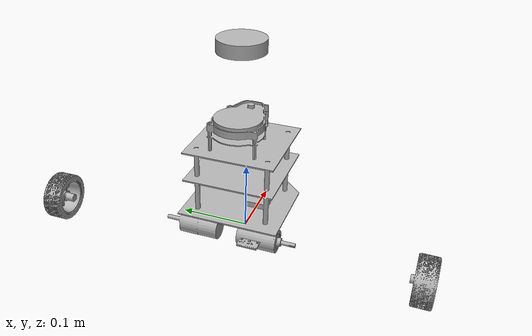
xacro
<?xml version="1.0" ?>
<robot name="edu_amr" xmlns:xacro="http://www.ros.org/wiki/xacro">

<xacro:include filename="$(find edu_amr_description)/urdf/materials.xacro" />
<xacro:include filename="$(find edu_amr_description)/urdf/edu_amr.trans" />
<xacro:include filename="$(find edu_amr_description)/urdf/navigation.gazebo" />

<link name="base_link">
  <inertial>
    <origin xyz="-0.004288012785095639 -4.3768436575443764e-17 0.03741152841675314" rpy="0 0 0"/>
    <mass value="1.321588513518243"/>
    <inertia ixx="0.002794" iyy="0.004573" izz="0.006247" ixy="-0.0" iyz="-0.0" ixz="0.000277"/>
  </inertial>
  <visual>
    <origin xyz="0 0 0" rpy="0 0 0"/>
    <geometry>
      <mesh filename="$(find edu_amr_description)/meshes/base_link.stl" scale="0.001 0.001 0.001"/>
    </geometry>
    <material name="silver"/>
  </visual>
  <collision>
    <origin xyz="0 0 0" rpy="0 0 0"/>
    <geometry>
      <mesh filename="$(find edu_amr_description)/meshes/base_link.stl" scale="0.001 0.001 0.001"/>
    </geometry>
  </collision>
</link>

<link name="left_wheel_1">
  <inertial>
    <origin xyz="0.0 -0.012499999999999997 0.0" rpy="0 0 0"/>
    <mass value="0.07518292500997302"/>
    <inertia ixx="2.3e-05" iyy="3.9e-05" izz="2.3e-05" ixy="0.0" iyz="-0.0" ixz="0.0"/>
  </inertial>
  <visual>
    <origin xyz="0.055 0.085 -0.0325" rpy="0 0 0"/>
    <geometry>
      <mesh filename="$(find edu_amr_description)/meshes/left_wheel_1.stl" scale="0.001 0.001 0.001"/>
    </geometry>
    <material name="silver"/>
  </visual>
  <collision>
    <origin xyz="0.055 0.085 -0.0325" rpy="0 0 0"/>
    <geometry>
      <mesh filename="$(find edu_amr_description)/meshes/left_wheel_1.stl" scale="0.001 0.001 0.001"/>
    </geometry>
  </collision>
</link>

<link name="right_wheel_1">
  <inertial>
    <origin xyz="6.938893903907228e-18 0.012499999999999997 0.0" rpy="0 0 0"/>
    <mass value="0.07518292500997299"/>
    <inertia ixx="2.3e-05" iyy="3.9e-05" izz="2.3e-05" ixy="0.0" iyz="0.0" ixz="0.0"/>
  </inertial>
  <visual>
    <origin xyz="0.055 -0.085 -0.0325" rpy="0 0 0"/>
    <geometry>
      <mesh filename="$(find edu_amr_description)/meshes/right_wheel_1.stl" scale="0.001 0.001 0.001"/>
    </geometry>
    <material name="silver"/>
  </visual>
  <collision>
    <origin xyz="0.055 -0.085 -0.0325" rpy="0 0 0"/>
    <geometry>
      <mesh filename="$(find edu_amr_description)/meshes/right_wheel_1.stl" scale="0.001 0.001 0.001"/>
    </geometry>
  </collision>
</link>

<link name="lidar_1">
  <inertial>
    <origin xyz="-2.2981640954156113e-07 0.0 0.007499999999999979" rpy="0 0 0"/>
    <mass value="0.07966293571340313"/>
    <inertia ixx="2.6e-05" iyy="2.6e-05" izz="4.9e-05" ixy="0.0" iyz="-0.0" ixz="0.0"/>
  </inertial>
  <visual>
    <origin xyz="0.046503 -0.0 -0.1075" rpy="0 0 0"/>
    <geometry>
      <mesh filename="$(find edu_amr_description)/meshes/lidar_1.stl" scale="0.001 0.001 0.001"/>
    </geometry>
    <material name="silver"/>
  </visual>
  <collision>
    <origin xyz="0.046503 -0.0 -0.1075" rpy="0 0 0"/>
    <geometry>
      <mesh filename="$(find edu_amr_description)/meshes/lidar_1.stl" scale="0.001 0.001 0.001"/>
    </geometry>
  </collision>
</link>

<link name="camera_1">
  <inertial>
    <origin xyz="0.0 0.0 0.014999999999999993" rpy="0 0 0"/>
    <mass value="0.28259999999999996"/>
    <inertia ixx="0.000106" iyy="3.1e-05" izz="9.4e-05" ixy="0.0" iyz="0.0" ixz="0.0"/>
  </inertial>
  <visual>
    <origin xyz="-0.07 -0.0 -0.0575" rpy="0 0 0"/>
    <geometry>
      <mesh filename="$(find edu_amr_description)/meshes/camera_1.stl" scale="0.001 0.001 0.001"/>
    </geometry>
    <material name="silver"/>
  </visual>
  <collision>
    <origin xyz="-0.07 -0.0 -0.0575" rpy="0 0 0"/>
    <geometry>
      <mesh filename="$(find edu_amr_description)/meshes/camera_1.stl" scale="0.001 0.001 0.001"/>
    </geometry>
  </collision>
</link>

<link name="imu_1">
  <inertial>
    <origin xyz="-0.13 1.232595164407831e-33 0.0025000000000000022" rpy="0 0 0"/>
    <mass value="0.0314"/>
    <inertia ixx="4e-06" iyy="1e-06" izz="5e-06" ixy="-0.0" iyz="-0.0" ixz="-0.0"/>
  </inertial>
  <visual>
    <origin xyz="-0.095 -0.0 -0.0525" rpy="0 0 0"/>
    <geometry>
      <mesh filename="$(find edu_amr_description)/meshes/imu_1.stl" scale="0.001 0.001 0.001"/>
    </geometry>
    <material name="silver"/>
  </visual>
  <collision>
    <origin xyz="-0.095 -0.0 -0.0525" rpy="0 0 0"/>
    <geometry>
      <mesh filename="$(find edu_amr_description)/meshes/imu_1.stl" scale="0.001 0.001 0.001"/>
    </geometry>
  </collision>
</link>

<joint name="left_wheel_joint" type="continuous">
  <origin xyz="-0.065 0.095 0.0325" rpy="0 0 0"/>
  <parent link="base_link"/>
  <child link="left_wheel_1"/>
  <axis xyz="0.0 1.0 0.0"/>
</joint>

<joint name="right_wheel_joint" type="continuous">
  <origin xyz="-0.065 -0.095 0.0325" rpy="0 0 0"/>
  <parent link="base_link"/>
  <child link="right_wheel_1"/>
  <axis xyz="0.0 1.0 0.0"/>
</joint>

<joint name="imu_joint" type="fixed">
  <origin xyz="-0.019801 -0.026021 0.062522" rpy="0 0 0"/>
  <parent link="base_link"/>
  <child link="imu_1"/>
</joint>

<joint name="camera_joint" type="fixed">
  <origin xyz="0.044 0.0 0.1655" rpy="0 0 0"/>
  <parent link="base_link"/>
  <child link="camera_1"/>
</joint>

<joint name="lidar_joint" type="fixed">
  <origin xyz="-0.036095 0.0 0.194" rpy="0 0 0"/>
  <parent link="base_link"/>
  <child link="lidar_1"/>
</joint>

</robot>

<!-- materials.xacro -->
<robot name="edu_amr" xmlns:xacro="http://www.ros.org/wiki/xacro" >

	<material name="silver">
		<color rgba="0.700 0.700 0.700 1.000"/>
	</material>

	<material name="black" >
		<color rgba="0.0 0.0 0.0 1.0" />
	</material>

	<material name="green" >
    <color rgba="0.08235294117647059 0.6901960784313725 0.10196078431372549 1.0" />
  </material>

	<material name="blue" >
    <color rgba="0.011764705882352941 0.2627450980392157 0.8745098039215686 1.0" />
  </material>

</robot>

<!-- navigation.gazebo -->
<robot name="edu_amr_robot" xmlns:xacro="http://www.ros.org/wiki/xacro" >

<xacro:property name="body_color" value="Gazebo/Orange" />
<xacro:property name="wheel_color" value="Gazebo/Black" />
<xacro:property name="lidar_color" value="Gazebo/Blue" />

<gazebo>
  <plugin name="control" filename="libgazebo_ros_control.so"/>
</gazebo>
<gazebo reference="base_link">
  <material>${body_color}</material>
  <mu1>0.2</mu1>
  <mu2>0.2</mu2>
  <selfCollide>true</selfCollide>
  <gravity>true</gravity>
</gazebo>

<gazebo reference="left_wheel_1">
  <material>${wheel_color}</material>
  <mu1>100</mu1>
  <mu2>100</mu2>
  <selfCollide>true</selfCollide>
</gazebo>

<gazebo reference="right_wheel_1">
  <material>${wheel_color}</material>
  <mu1>100</mu1>
  <mu2>100</mu2>
  <selfCollide>true</selfCollide>
</gazebo>

<gazebo reference="lidar_1">
  <material>${lidar_color}</material>
  <mu1>0.2</mu1>
  <mu2>0.2</mu2>
  <selfCollide>true</selfCollide>
</gazebo>

<gazebo reference="camera_1">
  <material>${lidar_color}</material>
  <mu1>0.2</mu1>
  <mu2>0.2</mu2>
  <selfCollide>true</selfCollide>
</gazebo>

<gazebo reference="imu_1">
  <material>${lidar_color}</material>
  <mu1>0.2</mu1>
  <mu2>0.2</mu2>
  <selfCollide>true</selfCollide>
</gazebo>

<gazebo>
   <plugin name="differential_drive_controller" filename="libgazebo_ros_diff_drive.so">
    <!-- Plugin update rate in Hz -->
    <updateRate>10</updateRate>
    <!-- Name of left joint, defaults to `left_joint` -->
    <leftJoint>right_joint</leftJoint>
    <!-- Name of right joint, defaults to `right_joint` -->
    <rightJoint>left_joint</rightJoint>
    <!-- The distance from the center of one wheel to the other, in meters, defaults to 0.34 m -->
    <wheelSeparation>0.170</wheelSeparation>
    <!-- Diameter of the wheels, in meters, defaults to 0.15 m -->
    <wheelDiameter>0.065</wheelDiameter>
    <!-- Wheel acceleration, in rad/s^2, defaults to 0.0 rad/s^2 -->
    <wheelAcceleration>1.0</wheelAcceleration>
    <!-- Maximum torque which the wheels can produce, in Nm, defaults to 5 Nm -->
    <wheelTorque>10</wheelTorque>
    <!-- Topic to receive geometry_msgs/Twist message commands, defaults to `cmd_vel` -->
    <commandTopic>cmd_vel</commandTopic>
    <!-- Topic to publish nav_msgs/Odometry messages, defaults to `odom` -->
    <odometryTopic>odom</odometryTopic>
    <!-- Odometry frame, defaults to `odom` -->
    <odometryFrame>odom</odometryFrame>
    <!-- Robot frame to calculate odometry from, defaults to `base_footprint` -->
    <robotBaseFrame>base_link</robotBaseFrame>
    <!-- Odometry source, 0 for ENCODER, 1 for WORLD, defaults to WORLD -->
    <odometrySource>1</odometrySource>
    <!-- Set to true to publish transforms for the wheel links, defaults to false -->
    <publishWheelTF>true</publishWheelTF>
    <!-- Set to true to publish transforms for the odometry, defaults to true -->
    <publishOdom>true</publishOdom>
    <!-- Set to true to publish sensor_msgs/JointState on /joint_states for the wheel joints, defaults to false -->
    <publishWheelJointState>true</publishWheelJointState>
    <!-- Set to true to swap right and left wheels, defaults to true -->
    <legacyMode>false</legacyMode>
  </plugin>
</gazebo>

<gazebo reference="lidar_1">
    <sensor type="ray" name="sen_lidar">
      <pose>0 0 0 0 0 0</pose>
      <visualize>true</visualize>
      <update_rate>10</update_rate>
      <ray>
        <scan>
          <horizontal>
            <samples>360</samples>
            <resolution>1</resolution>
            <min_angle>-3.14159</min_angle>
            <max_angle>3.14159</max_angle>
          </horizontal>
        </scan>
        <range>
          <min>0.10</min>
          <max>10.0</max>
          <resolution>0.01</resolution>
        </range>
        <noise>
          <type>gaussian</type>
          <mean>0.0</mean>
          <stddev>0.01</stddev>
        </noise>
      </ray>
      <plugin name="gazebo_ros_head_hokuyo_controller" filename="libgazebo_ros_laser.so">
        <topicName>/scan</topicName>
        <frameName>lidar_1</frameName>
      </plugin>
    </sensor>
  </gazebo>

  <!-- camera -->
  <gazebo reference="camera_1">
    <sensor type="camera" name="camera1">
      <update_rate>30.0</update_rate>
      <camera name="head">
        <horizontal_fov>1.047</horizontal_fov>
        <image>
          <width>640</width>
          <height>480</height>
          <format>R8G8B8</format>
        </image>
        <clip>
          <near>0.02</near>
          <far>300</far>
        </clip>
        <noise>
          <type>gaussian</type>
          <!-- Noise is sampled independently per pixel on each frame.
               That pixel's noise value is added to each of its color
               channels, which at that point lie in the range [0,1]. -->
          <mean>0.0</mean>
          <stddev>0.007</stddev>
        </noise>
      </camera>
      <plugin name="camera_controller" filename="libgazebo_ros_camera.so">
        <alwaysOn>true</alwaysOn>
        <updateRate>0.0</updateRate>
        <cameraName>edu_amr/camera1</cameraName>
        <imageTopicName>image_raw</imageTopicName>
        <cameraInfoTopicName>camera_info</cameraInfoTopicName>
        <frameName>camera_1</frameName>
        <hackBaseline>0.07</hackBaseline>
        <distortionK1>0.0</distortionK1>
        <distortionK2>0.0</distortionK2>
        <distortionK3>0.0</distortionK3>
        <distortionT1>0.0</distortionT1>
        <distortionT2>0.0</distortionT2>
      </plugin>
    </sensor>
  </gazebo>

</robot>
